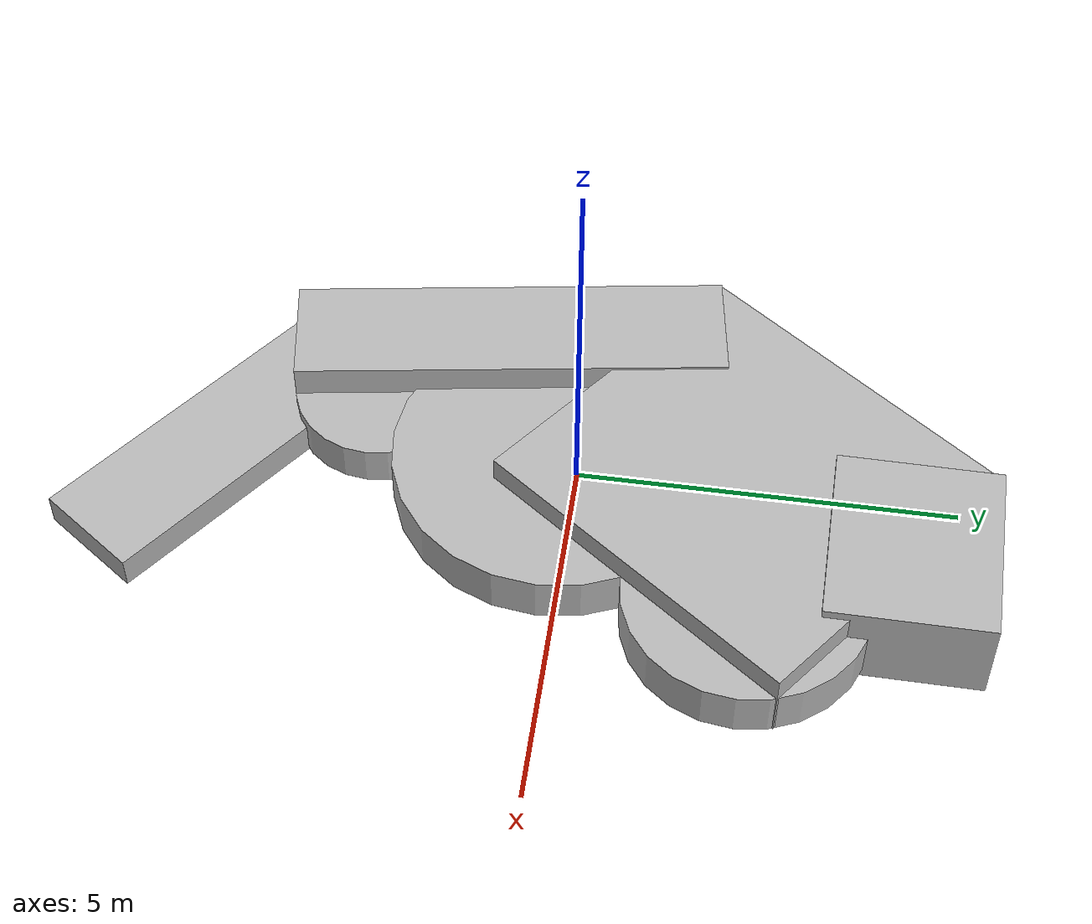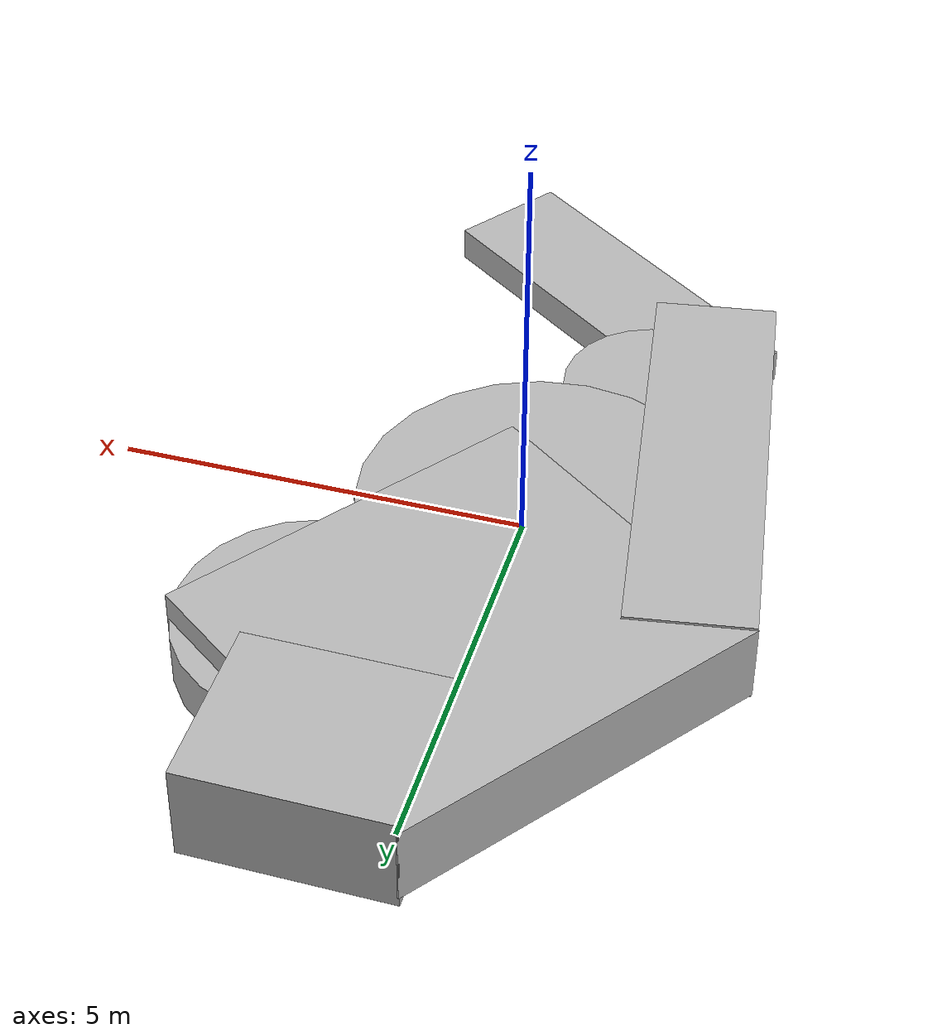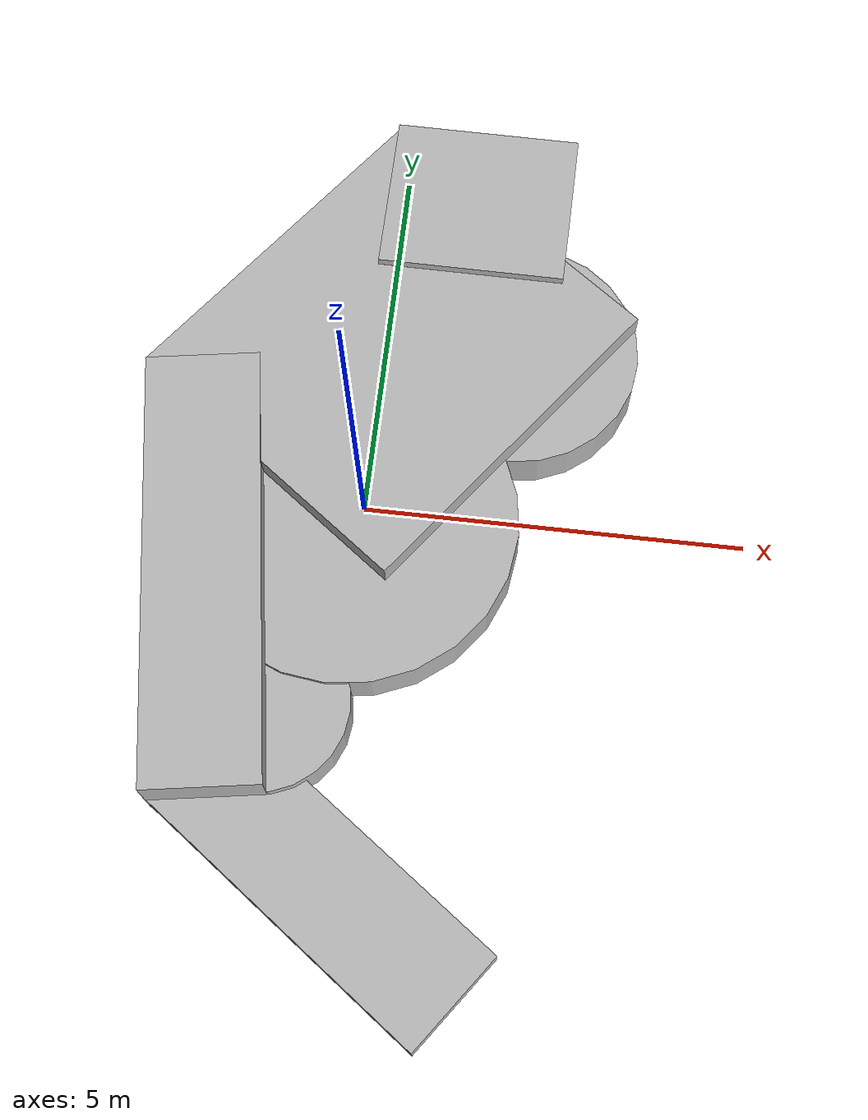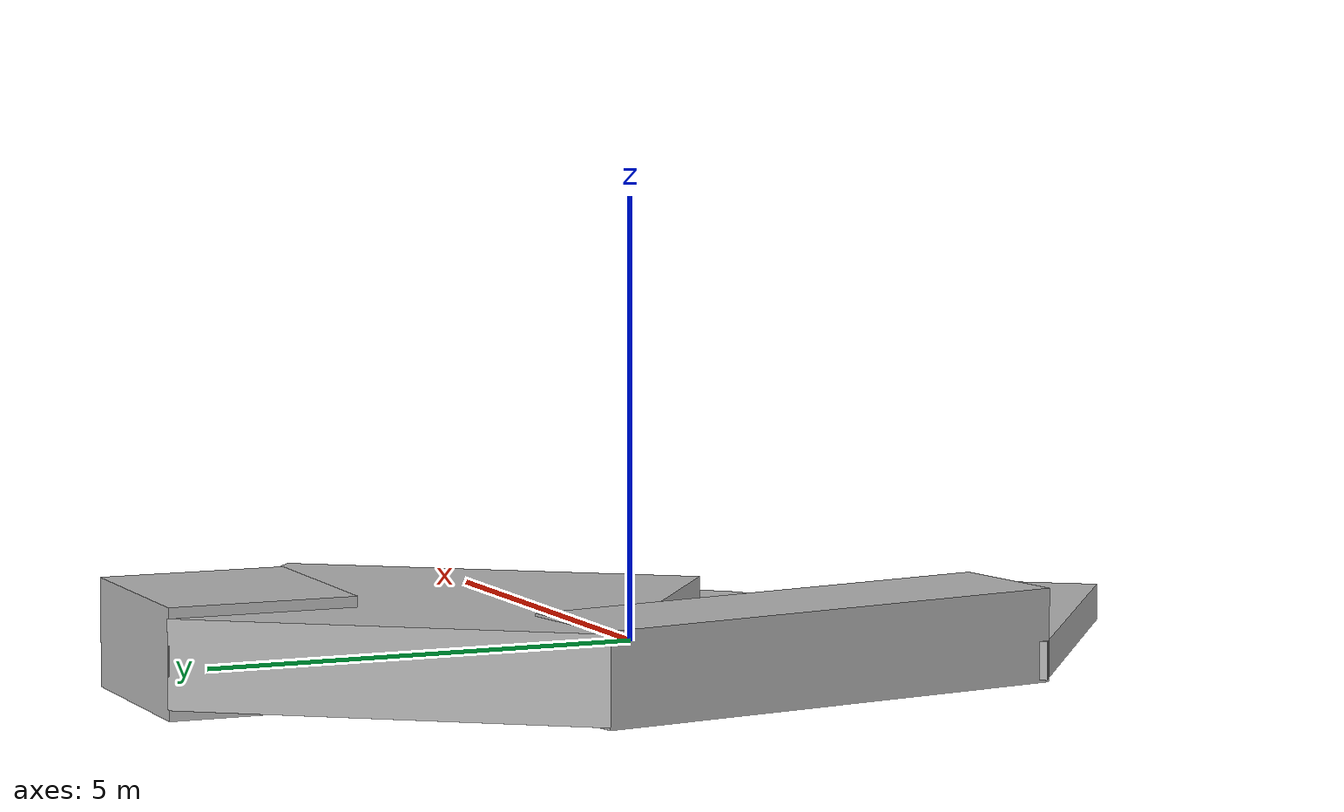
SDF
<?xml version='1.0'?>
<sdf version='1.6'>
  <model name='TrainingStructure'>
    <link name='link_0'>
      <inertial>
        <mass>21.5791</mass>
        <inertia>
          <ixx>45.0346</ixx>
          <ixy>0</ixy>
          <ixz>0</ixz>
          <iyy>36.626</iyy>
          <iyz>0</iyz>
          <izz>78.0641</izz>
        </inertia>
        <pose frame=''>0 0 0 0 -0 0</pose>
      </inertial>
      <pose frame=''>0.119568 2.23673 0.114789 0 0 -0.639786</pose>
      <self_collide>0</self_collide>
      <enable_wind>0</enable_wind>
      <kinematic>0</kinematic>
      <visual name='visual'>
        <pose frame=''>0 0 0 0 -0 0</pose>
        <geometry>
          <box>
            <size>4.40084 4.90341 1</size>
          </box>
        </geometry>
        <material>
          <lighting>1</lighting>
          <script>
            <uri>/root/model_editor_models/TrainingStructure/materials/scripts</uri>
            <uri>/root/model_editor_models/TrainingStructure/materials/textures</uri>
            <name>TrainingStructure/Diffuse</name>
          </script>
          <emissive>0 0 0 1</emissive>
        </material>
        <transparency>0</transparency>
        <cast_shadows>1</cast_shadows>
      </visual>
      <collision name='collision'>
        <laser_retro>0</laser_retro>
        <max_contacts>10</max_contacts>
        <pose frame=''>0 0 0 0 -0 0</pose>
        <geometry>
          <box>
            <size>4.40084 4.90341 1</size>
          </box>
        </geometry>
        <surface>
          <friction>
            <ode>
              <mu>1</mu>
              <mu2>1</mu2>
              <fdir1>0 0 0</fdir1>
              <slip1>0</slip1>
              <slip2>0</slip2>
            </ode>
            <torsional>
              <coefficient>1</coefficient>
              <patch_radius>0</patch_radius>
              <surface_radius>0</surface_radius>
              <use_patch_radius>1</use_patch_radius>
              <ode>
                <slip>0</slip>
              </ode>
            </torsional>
          </friction>
          <bounce>
            <restitution_coefficient>0</restitution_coefficient>
            <threshold>1e+06</threshold>
          </bounce>
          <contact>
            <collide_without_contact>0</collide_without_contact>
            <collide_without_contact_bitmask>1</collide_without_contact_bitmask>
            <collide_bitmask>1</collide_bitmask>
            <ode>
              <soft_cfm>0</soft_cfm>
              <soft_erp>0.2</soft_erp>
              <kp>1e+13</kp>
              <kd>1</kd>
              <max_vel>0.01</max_vel>
              <min_depth>0</min_depth>
            </ode>
            <bullet>
              <split_impulse>1</split_impulse>
              <split_impulse_penetration_threshold>-0.01</split_impulse_penetration_threshold>
              <soft_cfm>0</soft_cfm>
              <soft_erp>0.2</soft_erp>
              <kp>1e+13</kp>
              <kd>1</kd>
            </bullet>
          </contact>
        </surface>
      </collision>
    </link>
    <link name='link_1'>
      <inertial>
        <mass>12.8917</mass>
        <inertia>
          <ixx>16.369</ixx>
          <ixy>0</ixy>
          <ixz>0</ixz>
          <iyy>16.369</iyy>
          <iyz>0</iyz>
          <izz>31.8224</izz>
        </inertia>
        <pose frame=''>0 0 0 0 -0 0</pose>
      </inertial>
      <pose frame=''>-0.158587 -0.257007 -0.05951 0 -0 0</pose>
      <self_collide>0</self_collide>
      <enable_wind>0</enable_wind>
      <kinematic>0</kinematic>
      <visual name='visual'>
        <pose frame=''>0 0 0 0 -0 0</pose>
        <geometry>
          <cylinder>
            <radius>2.22191</radius>
            <length>0.652816</length>
          </cylinder>
        </geometry>
        <material>
          <lighting>1</lighting>
          <script>
            <uri>/root/model_editor_models/TrainingStructure/materials/scripts</uri>
            <uri>/root/model_editor_models/TrainingStructure/materials/textures</uri>
            <name>TrainingStructure/Diffuse</name>
          </script>
          <emissive>0 0 0 1</emissive>
        </material>
        <transparency>0</transparency>
        <cast_shadows>1</cast_shadows>
      </visual>
      <collision name='collision'>
        <laser_retro>0</laser_retro>
        <max_contacts>10</max_contacts>
        <pose frame=''>0 0 0 0 -0 0</pose>
        <geometry>
          <cylinder>
            <radius>2.22191</radius>
            <length>0.652816</length>
          </cylinder>
        </geometry>
        <surface>
          <friction>
            <ode>
              <mu>1</mu>
              <mu2>1</mu2>
              <fdir1>0 0 0</fdir1>
              <slip1>0</slip1>
              <slip2>0</slip2>
            </ode>
            <torsional>
              <coefficient>1</coefficient>
              <patch_radius>0</patch_radius>
              <surface_radius>0</surface_radius>
              <use_patch_radius>1</use_patch_radius>
              <ode>
                <slip>0</slip>
              </ode>
            </torsional>
          </friction>
          <bounce>
            <restitution_coefficient>0</restitution_coefficient>
            <threshold>1e+06</threshold>
          </bounce>
          <contact>
            <collide_without_contact>0</collide_without_contact>
            <collide_without_contact_bitmask>1</collide_without_contact_bitmask>
            <collide_bitmask>1</collide_bitmask>
            <ode>
              <soft_cfm>0</soft_cfm>
              <soft_erp>0.2</soft_erp>
              <kp>1e+13</kp>
              <kd>1</kd>
              <max_vel>0.01</max_vel>
              <min_depth>0</min_depth>
            </ode>
            <bullet>
              <split_impulse>1</split_impulse>
              <split_impulse_penetration_threshold>-0.01</split_impulse_penetration_threshold>
              <soft_cfm>0</soft_cfm>
              <soft_erp>0.2</soft_erp>
              <kp>1e+13</kp>
              <kd>1</kd>
            </bullet>
          </contact>
        </surface>
      </collision>
    </link>
    <link name='link_1_clone'>
      <inertial>
        <mass>2.94105</mass>
        <inertia>
          <ixx>1.04406</ixx>
          <ixy>0</ixy>
          <ixz>0</ixz>
          <iyy>1.04406</iyy>
          <iyz>0</iyz>
          <izz>1.93511</izz>
        </inertia>
        <pose frame=''>0 0 0 0 -0 0</pose>
      </inertial>
      <pose frame=''>-0.947783 -2.80294 -0.070976 0 -0 0</pose>
      <self_collide>0</self_collide>
      <enable_wind>0</enable_wind>
      <kinematic>0</kinematic>
      <visual name='visual'>
        <pose frame=''>0 0 0 0 -0 0</pose>
        <geometry>
          <cylinder>
            <radius>1.14714</radius>
            <length>0.558724</length>
          </cylinder>
        </geometry>
        <material>
          <lighting>1</lighting>
          <script>
            <uri>/root/model_editor_models/TrainingStructure/materials/scripts</uri>
            <uri>/root/model_editor_models/TrainingStructure/materials/textures</uri>
            <name>TrainingStructure/Diffuse</name>
          </script>
          <shader type='pixel'/>
          <emissive>0 0 0 1</emissive>
        </material>
        <transparency>0</transparency>
        <cast_shadows>1</cast_shadows>
      </visual>
      <collision name='collision'>
        <laser_retro>0</laser_retro>
        <max_contacts>10</max_contacts>
        <pose frame=''>0 0 0 0 -0 0</pose>
        <geometry>
          <cylinder>
            <radius>1.14714</radius>
            <length>0.558724</length>
          </cylinder>
        </geometry>
        <surface>
          <friction>
            <ode>
              <mu>1</mu>
              <mu2>1</mu2>
              <fdir1>0 0 0</fdir1>
              <slip1>0</slip1>
              <slip2>0</slip2>
            </ode>
            <torsional>
              <coefficient>1</coefficient>
              <patch_radius>0</patch_radius>
              <surface_radius>0</surface_radius>
              <use_patch_radius>1</use_patch_radius>
              <ode>
                <slip>0</slip>
              </ode>
            </torsional>
          </friction>
          <bounce>
            <restitution_coefficient>0</restitution_coefficient>
            <threshold>1e+06</threshold>
          </bounce>
          <contact>
            <collide_without_contact>0</collide_without_contact>
            <collide_without_contact_bitmask>1</collide_without_contact_bitmask>
            <collide_bitmask>1</collide_bitmask>
            <ode>
              <soft_cfm>0</soft_cfm>
              <soft_erp>0.2</soft_erp>
              <kp>1e+13</kp>
              <kd>1</kd>
              <max_vel>0.01</max_vel>
              <min_depth>0</min_depth>
            </ode>
            <bullet>
              <split_impulse>1</split_impulse>
              <split_impulse_penetration_threshold>-0.01</split_impulse_penetration_threshold>
              <soft_cfm>0</soft_cfm>
              <soft_erp>0.2</soft_erp>
              <kp>1e+13</kp>
              <kd>1</kd>
            </bullet>
          </contact>
        </surface>
      </collision>
    </link>
    <link name='link_1_clone_clone'>
      <inertial>
        <mass>6.83093</mass>
        <inertia>
          <ixx>4.70981</ixx>
          <ixy>0</ixy>
          <ixz>0</ixz>
          <iyy>4.70981</iyy>
          <iyz>0</iyz>
          <izz>8.93444</izz>
        </inertia>
        <pose frame=''>0 0 0 0 -0 0</pose>
      </inertial>
      <pose frame=''>1.79907 2.40152 -0.059511 0 -0 0</pose>
      <self_collide>0</self_collide>
      <enable_wind>0</enable_wind>
      <kinematic>0</kinematic>
      <visual name='visual'>
        <pose frame=''>0 0 0 0 -0 0</pose>
        <geometry>
          <cylinder>
            <radius>1.61737</radius>
            <length>0.652816</length>
          </cylinder>
        </geometry>
        <material>
          <lighting>1</lighting>
          <script>
            <uri>/root/model_editor_models/TrainingStructure/materials/scripts</uri>
            <uri>/root/model_editor_models/TrainingStructure/materials/textures</uri>
            <name>TrainingStructure/Diffuse</name>
          </script>
          <shader type='pixel'/>
          <emissive>0 0 0 1</emissive>
        </material>
        <transparency>0</transparency>
        <cast_shadows>1</cast_shadows>
      </visual>
      <collision name='collision'>
        <laser_retro>0</laser_retro>
        <max_contacts>10</max_contacts>
        <pose frame=''>0 0 0 0 -0 0</pose>
        <geometry>
          <cylinder>
            <radius>1.61737</radius>
            <length>0.652816</length>
          </cylinder>
        </geometry>
        <surface>
          <friction>
            <ode>
              <mu>1</mu>
              <mu2>1</mu2>
              <fdir1>0 0 0</fdir1>
              <slip1>0</slip1>
              <slip2>0</slip2>
            </ode>
            <torsional>
              <coefficient>1</coefficient>
              <patch_radius>0</patch_radius>
              <surface_radius>0</surface_radius>
              <use_patch_radius>1</use_patch_radius>
              <ode>
                <slip>0</slip>
              </ode>
            </torsional>
          </friction>
          <bounce>
            <restitution_coefficient>0</restitution_coefficient>
            <threshold>1e+06</threshold>
          </bounce>
          <contact>
            <collide_without_contact>0</collide_without_contact>
            <collide_without_contact_bitmask>1</collide_without_contact_bitmask>
            <collide_bitmask>1</collide_bitmask>
            <ode>
              <soft_cfm>0</soft_cfm>
              <soft_erp>0.2</soft_erp>
              <kp>1e+13</kp>
              <kd>1</kd>
              <max_vel>0.01</max_vel>
              <min_depth>0</min_depth>
            </ode>
            <bullet>
              <split_impulse>1</split_impulse>
              <split_impulse_penetration_threshold>-0.01</split_impulse_penetration_threshold>
              <soft_cfm>0</soft_cfm>
              <soft_erp>0.2</soft_erp>
              <kp>1e+13</kp>
              <kd>1</kd>
            </bullet>
          </contact>
        </surface>
      </collision>
    </link>
    <link name='link_2'>
      <inertial>
        <mass>9.3389</mass>
        <inertia>
          <ixx>27.1825</ixx>
          <ixy>0</ixy>
          <ixz>0</ixz>
          <iyy>2.65975</iyy>
          <iyz>0</iyz>
          <izz>28.0899</izz>
        </inertia>
        <pose frame=''>0 0 0 0 -0 0</pose>
      </inertial>
      <pose frame=''>-1.89856 -1.16787 0.114789 0 -0 0.157806</pose>
      <self_collide>0</self_collide>
      <enable_wind>0</enable_wind>
      <kinematic>0</kinematic>
      <visual name='visual'>
        <pose frame=''>0 0 0 0 -0 0</pose>
        <geometry>
          <box>
            <size>1.51388 5.81397 1.06104</size>
          </box>
        </geometry>
        <material>
          <lighting>1</lighting>
          <script>
            <uri>/root/model_editor_models/TrainingStructure/materials/scripts</uri>
            <uri>/root/model_editor_models/TrainingStructure/materials/textures</uri>
            <name>TrainingStructure/Diffuse</name>
          </script>
          <emissive>0 0 0 1</emissive>
        </material>
        <transparency>0</transparency>
        <cast_shadows>1</cast_shadows>
      </visual>
      <collision name='collision'>
        <laser_retro>0</laser_retro>
        <max_contacts>10</max_contacts>
        <pose frame=''>0 0 0 0 -0 0</pose>
        <geometry>
          <box>
            <size>1.51388 5.81397 1.06104</size>
          </box>
        </geometry>
        <surface>
          <friction>
            <ode>
              <mu>1</mu>
              <mu2>1</mu2>
              <fdir1>0 0 0</fdir1>
              <slip1>0</slip1>
              <slip2>0</slip2>
            </ode>
            <torsional>
              <coefficient>1</coefficient>
              <patch_radius>0</patch_radius>
              <surface_radius>0</surface_radius>
              <use_patch_radius>1</use_patch_radius>
              <ode>
                <slip>0</slip>
              </ode>
            </torsional>
          </friction>
          <bounce>
            <restitution_coefficient>0</restitution_coefficient>
            <threshold>1e+06</threshold>
          </bounce>
          <contact>
            <collide_without_contact>0</collide_without_contact>
            <collide_without_contact_bitmask>1</collide_without_contact_bitmask>
            <collide_bitmask>1</collide_bitmask>
            <ode>
              <soft_cfm>0</soft_cfm>
              <soft_erp>0.2</soft_erp>
              <kp>1e+13</kp>
              <kd>1</kd>
              <max_vel>0.01</max_vel>
              <min_depth>0</min_depth>
            </ode>
            <bullet>
              <split_impulse>1</split_impulse>
              <split_impulse_penetration_threshold>-0.01</split_impulse_penetration_threshold>
              <soft_cfm>0</soft_cfm>
              <soft_erp>0.2</soft_erp>
              <kp>1e+13</kp>
              <kd>1</kd>
            </bullet>
          </contact>
        </surface>
      </collision>
    </link>
    <link name='link_2_clone'>
      <inertial>
        <mass>3.02559</mass>
        <inertia>
          <ixx>5.33093</ixx>
          <ixy>0</ixy>
          <ixz>0</ixz>
          <iyy>0.625903</iyy>
          <iyz>0</iyz>
          <izz>5.86072</izz>
        </inertia>
        <pose frame=''>0 0 0 0 -0 0</pose>
      </inertial>
      <pose frame=''>0.034696 -4.82297 -0.165836 0 -0 0.944597</pose>
      <self_collide>0</self_collide>
      <enable_wind>0</enable_wind>
      <kinematic>0</kinematic>
      <visual name='visual'>
        <pose frame=''>0 0 0 0 -0 0</pose>
        <geometry>
          <box>
            <size>1.51388 4.57742 0.436586</size>
          </box>
        </geometry>
        <material>
          <lighting>1</lighting>
          <script>
            <uri>/root/model_editor_models/TrainingStructure/materials/scripts</uri>
            <uri>/root/model_editor_models/TrainingStructure/materials/textures</uri>
            <name>TrainingStructure/Diffuse</name>
          </script>
          <shader type='pixel'/>
          <emissive>0 0 0 1</emissive>
        </material>
        <transparency>0</transparency>
        <cast_shadows>1</cast_shadows>
      </visual>
      <collision name='collision'>
        <laser_retro>0</laser_retro>
        <max_contacts>10</max_contacts>
        <pose frame=''>0 0 0 0 -0 0</pose>
        <geometry>
          <box>
            <size>1.51388 4.57742 0.436586</size>
          </box>
        </geometry>
        <surface>
          <friction>
            <ode>
              <mu>1</mu>
              <mu2>1</mu2>
              <fdir1>0 0 0</fdir1>
              <slip1>0</slip1>
              <slip2>0</slip2>
            </ode>
            <torsional>
              <coefficient>1</coefficient>
              <patch_radius>0</patch_radius>
              <surface_radius>0</surface_radius>
              <use_patch_radius>1</use_patch_radius>
              <ode>
                <slip>0</slip>
              </ode>
            </torsional>
          </friction>
          <bounce>
            <restitution_coefficient>0</restitution_coefficient>
            <threshold>1e+06</threshold>
          </bounce>
          <contact>
            <collide_without_contact>0</collide_without_contact>
            <collide_without_contact_bitmask>1</collide_without_contact_bitmask>
            <collide_bitmask>1</collide_bitmask>
            <ode>
              <soft_cfm>0</soft_cfm>
              <soft_erp>0.2</soft_erp>
              <kp>1e+13</kp>
              <kd>1</kd>
              <max_vel>0.01</max_vel>
              <min_depth>0</min_depth>
            </ode>
            <bullet>
              <split_impulse>1</split_impulse>
              <split_impulse_penetration_threshold>-0.01</split_impulse_penetration_threshold>
              <soft_cfm>0</soft_cfm>
              <soft_erp>0.2</soft_erp>
              <kp>1e+13</kp>
              <kd>1</kd>
            </bullet>
          </contact>
        </surface>
      </collision>
    </link>
    <link name='link_4'>
      <inertial>
        <mass>6.74556</mass>
        <inertia>
          <ixx>3.49935</ixx>
          <ixy>0</ixy>
          <ixz>0</ixz>
          <iyy>4.40667</iyy>
          <iyz>0</iyz>
          <izz>6.16988</izz>
        </inertia>
        <pose frame=''>0 0 0 0 -0 0</pose>
      </inertial>
      <pose frame=''>1.05159 4.41254 0.114789 0 0 -0.009447</pose>
      <self_collide>0</self_collide>
      <enable_wind>0</enable_wind>
      <kinematic>0</kinematic>
      <visual name='visual'>
        <pose frame=''>0 0 0 0 -0 0</pose>
        <geometry>
          <box>
            <size>2.50898 2.16354 1.24268</size>
          </box>
        </geometry>
        <material>
          <lighting>1</lighting>
          <script>
            <uri>/root/model_editor_models/TrainingStructure/materials/scripts</uri>
            <uri>/root/model_editor_models/TrainingStructure/materials/textures</uri>
            <name>TrainingStructure/Diffuse</name>
          </script>
          <emissive>0 0 0 1</emissive>
        </material>
        <transparency>0</transparency>
        <cast_shadows>1</cast_shadows>
      </visual>
      <collision name='collision'>
        <laser_retro>0</laser_retro>
        <max_contacts>10</max_contacts>
        <pose frame=''>0 0 0 0 -0 0</pose>
        <geometry>
          <box>
            <size>2.50898 2.16354 1.24268</size>
          </box>
        </geometry>
        <surface>
          <friction>
            <ode>
              <mu>1</mu>
              <mu2>1</mu2>
              <fdir1>0 0 0</fdir1>
              <slip1>0</slip1>
              <slip2>0</slip2>
            </ode>
            <torsional>
              <coefficient>1</coefficient>
              <patch_radius>0</patch_radius>
              <surface_radius>0</surface_radius>
              <use_patch_radius>1</use_patch_radius>
              <ode>
                <slip>0</slip>
              </ode>
            </torsional>
          </friction>
          <bounce>
            <restitution_coefficient>0</restitution_coefficient>
            <threshold>1e+06</threshold>
          </bounce>
          <contact>
            <collide_without_contact>0</collide_without_contact>
            <collide_without_contact_bitmask>1</collide_without_contact_bitmask>
            <collide_bitmask>1</collide_bitmask>
            <ode>
              <soft_cfm>0</soft_cfm>
              <soft_erp>0.2</soft_erp>
              <kp>1e+13</kp>
              <kd>1</kd>
              <max_vel>0.01</max_vel>
              <min_depth>0</min_depth>
            </ode>
            <bullet>
              <split_impulse>1</split_impulse>
              <split_impulse_penetration_threshold>-0.01</split_impulse_penetration_threshold>
              <soft_cfm>0</soft_cfm>
              <soft_erp>0.2</soft_erp>
              <kp>1e+13</kp>
              <kd>1</kd>
            </bullet>
          </contact>
        </surface>
      </collision>
    </link>
    <joint name='link_0_JOINT_0' type='fixed'>
      <parent>link_0</parent>
      <child>link_4</child>
      <pose frame=''>0 0 0 0 -0 0</pose>
      <physics>
        <ode>
          <limit>
            <cfm>0</cfm>
            <erp>0.2</erp>
          </limit>
          <suspension>
            <cfm>0</cfm>
            <erp>0.2</erp>
          </suspension>
        </ode>
      </physics>
    </joint>
    <joint name='link_0_JOINT_1' type='fixed'>
      <parent>link_0</parent>
      <child>link_1_clone_clone</child>
      <pose frame=''>0 0 0 0 -0 0</pose>
      <physics>
        <ode>
          <limit>
            <cfm>0</cfm>
            <erp>0.2</erp>
          </limit>
          <suspension>
            <cfm>0</cfm>
            <erp>0.2</erp>
          </suspension>
        </ode>
      </physics>
    </joint>
    <joint name='link_0_JOINT_2' type='fixed'>
      <parent>link_0</parent>
      <child>link_1</child>
      <pose frame=''>0 0 0 0 -0 0</pose>
      <physics>
        <ode>
          <limit>
            <cfm>0</cfm>
            <erp>0.2</erp>
          </limit>
          <suspension>
            <cfm>0</cfm>
            <erp>0.2</erp>
          </suspension>
        </ode>
      </physics>
    </joint>
    <joint name='link_0_JOINT_3' type='fixed'>
      <parent>link_0</parent>
      <child>link_2</child>
      <pose frame=''>0 0 0 0 -0 0</pose>
      <physics>
        <ode>
          <limit>
            <cfm>0</cfm>
            <erp>0.2</erp>
          </limit>
          <suspension>
            <cfm>0</cfm>
            <erp>0.2</erp>
          </suspension>
        </ode>
      </physics>
    </joint>
    <joint name='link_2_JOINT_4' type='fixed'>
      <parent>link_2</parent>
      <child>link_1_clone</child>
      <pose frame=''>0 0 0 0 -0 0</pose>
      <physics>
        <ode>
          <limit>
            <cfm>0</cfm>
            <erp>0.2</erp>
          </limit>
          <suspension>
            <cfm>0</cfm>
            <erp>0.2</erp>
          </suspension>
        </ode>
      </physics>
    </joint>
    <joint name='link_2_JOINT_5' type='fixed'>
      <parent>link_2</parent>
      <child>link_2_clone</child>
      <pose frame=''>0 0 0 0 -0 0</pose>
      <physics>
        <ode>
          <limit>
            <cfm>0</cfm>
            <erp>0.2</erp>
          </limit>
          <suspension>
            <cfm>0</cfm>
            <erp>0.2</erp>
          </suspension>
        </ode>
      </physics>
    </joint>
    <static>1</static>
    <allow_auto_disable>1</allow_auto_disable>
  </model>
</sdf>
